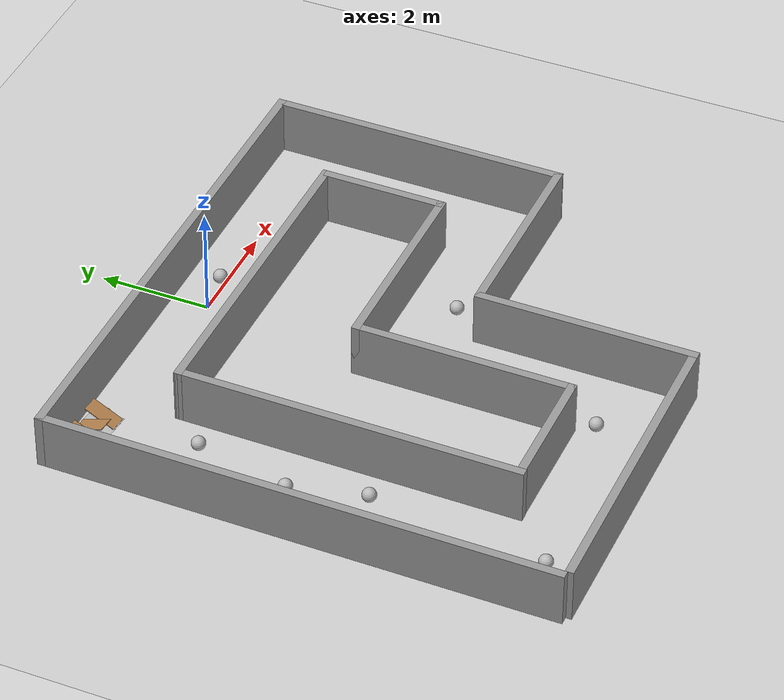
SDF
<sdf version="1.6">
 <world name="default">
  <light name="sun" type="directional">
   <pose>0 0 10 0 -0 0</pose>
   <diffuse>0.8 0.8 0.8 1</diffuse>
   <specular>0.2 0.2 0.2 1</specular>
   <attenuation>
    <range>1000</range>
    <constant>0.9</constant>
    <linear>0.01</linear>
    <quadratic>0.001</quadratic>
   </attenuation>
   <direction>0.5 0.1 -0.9</direction>
  </light>
  <model name="ground_plane">
   <static>1</static>
   <link name="link">
    <collision name="collision">
     <geometry><plane><normal>0 0 1</normal><size>100 100</size></plane></geometry>
     <surface><friction><ode><mu>100</mu><mu2>50</mu2></ode></friction></surface>
    </collision>
    <visual name="visual">
     <cast_shadows>0</cast_shadows>
     <geometry><plane><normal>0 0 1</normal><size>100 100</size></plane></geometry>
     <material>
      <script><uri>file://media/materials/scripts/gazebo.material</uri><name>Gazebo/Grey</name></script>
     </material>
    </visual>
    <velocity_decay><linear>0</linear><angular>0</angular></velocity_decay>
   </link>
  </model>
  <scene><ambient>0.4 0.4 0.4 1</ambient><background>0.7 0.7 0.7 1</background><shadows>0</shadows></scene>
  <physics name="default_physics" default="0" type="ode">
   <max_step_size>0.01</max_step_size>
   <real_time_factor>1</real_time_factor>
   <real_time_update_rate>0</real_time_update_rate>
  </physics>
  <model name="Circuit_ql_2">
   <pose>1e-06 -3.85 0 0 -0 1.567</pose>
   <link name="Wall_0">
    <collision name="Wall_0_Collision">
     <geometry><box><size>5.75 0.15 1</size></box></geometry>
     <pose>0 0 0.5 0 -0 0</pose>
    </collision>
    <visual name="Wall_0_Visual">
     <pose>0 0 0.5 0 -0 0</pose>
     <geometry><box><size>5.75 0.15 1</size></box></geometry>
     <material>
      <script><uri>file://media/materials/scripts/gazebo.material</uri><name>Gazebo/Grey</name></script>
      <ambient>1 1 1 1</ambient>
     </material>
    </visual>
    <pose>-4.6 1.725 0 0 0 -1.5708</pose>
   </link>
   <link name="Wall_1">
    <collision name="Wall_1_Collision">
     <geometry><box><size>4 0.15 1</size></box></geometry>
     <pose>0 0 0.5 0 -0 0</pose>
    </collision>
    <visual name="Wall_1_Visual">
     <pose>0 0 0.5 0 -0 0</pose>
     <geometry><box><size>4 0.15 1</size></box></geometry>
     <material>
      <script><uri>file://media/materials/scripts/gazebo.material</uri><name>Gazebo/Grey</name></script>
      <ambient>1 1 1 1</ambient>
     </material>
    </visual>
    <pose>-2.675 -1.075 0 0 -0 0</pose>
   </link>
   <link name="Wall_11">
    <collision name="Wall_11_Collision">
     <geometry><box><size>2.25 0.15 1</size></box></geometry>
     <pose>0 0 0.5 0 -0 0</pose>
    </collision>
    <visual name="Wall_11_Visual">
     <pose>0 0 0.5 0 -0 0</pose>
     <geometry><box><size>2.25 0.15 1</size></box></geometry>
     <material>
      <script><uri>file://media/materials/scripts/gazebo.material</uri><name>Gazebo/Grey</name></script>
      <ambient>1 1 1 1</ambient>
     </material>
    </visual>
    <pose>-3.036 1.559 0 0 0 -1.5708</pose>
   </link>
   <link name="Wall_12">
    <collision name="Wall_12_Collision">
     <geometry><box><size>4 0.15 1</size></box></geometry>
     <pose>0 0 0.5 0 -0 0</pose>
    </collision>
    <visual name="Wall_12_Visual">
     <pose>0 0 0.5 0 -0 0</pose>
     <geometry><box><size>4 0.15 1</size></box></geometry>
     <material>
      <script><uri>file://media/materials/scripts/gazebo.material</uri><name>Gazebo/Grey</name></script>
      <ambient>1 1 1 1</ambient>
     </material>
    </visual>
    <pose>-1.111 0.509 0 0 -0 0</pose>
   </link>
   <link name="Wall_13">
    <collision name="Wall_13_Collision">
     <geometry><box><size>3.75 0.15 1</size></box></geometry>
     <pose>0 0 0.5 0 -0 0</pose>
    </collision>
    <visual name="Wall_13_Visual">
     <pose>0 0 0.5 0 -0 0</pose>
     <geometry><box><size>3.75 0.15 1</size></box></geometry>
     <material>
      <script><uri>file://media/materials/scripts/gazebo.material</uri><name>Gazebo/Grey</name></script>
      <ambient>1 1 1 1</ambient>
     </material>
    </visual>
    <pose>0.814 -1.291 0 0 0 -1.5708</pose>
   </link>
   <link name="Wall_14">
    <collision name="Wall_14_Collision">
     <geometry><box><size>2.25 0.15 1</size></box></geometry>
     <pose>0 0 0.5 0 -0 0</pose>
    </collision>
    <visual name="Wall_14_Visual">
     <pose>0 0 0.5 0 -0 0</pose>
     <geometry><box><size>2.25 0.15 1</size></box></geometry>
     <material>
      <script><uri>file://media/materials/scripts/gazebo.material</uri><name>Gazebo/Grey</name></script>
      <ambient>1 1 1 1</ambient>
     </material>
    </visual>
    <pose>1.9 -3.091 0 0 -0 0</pose>
   </link>
   <link name="Wall_15">
    <collision name="Wall_15_Collision">
     <geometry><box><size>5.98502 0.15 1</size></box></geometry>
     <pose>0 0 0.5 0 -0 0</pose>
    </collision>
    <visual name="Wall_15_Visual">
     <pose>0 0 0.5 0 -0 0</pose>
     <geometry><box><size>5.98502 0.15 1</size></box></geometry>
     <material>
      <script><uri>file://media/materials/scripts/gazebo.material</uri><name>Gazebo/Grey</name></script>
      <ambient>1 1 1 1</ambient>
     </material>
    </visual>
    <pose>3.0215 -0.1735 0 0 -0 1.56823</pose>
   </link>
   <link name="Wall_16">
    <collision name="Wall_16_Collision">
     <geometry><box><size>6.2 0.15 1</size></box></geometry>
     <pose>0 0 0.5 0 -0 0</pose>
    </collision>
    <visual name="Wall_16_Visual">
     <pose>0 0 0.5 0 -0 0</pose>
     <geometry><box><size>6.2 0.15 1</size></box></geometry>
     <material>
      <script><uri>file://media/materials/scripts/gazebo.material</uri><name>Gazebo/Grey</name></script>
      <ambient>1 1 1 1</ambient>
     </material>
    </visual>
    <pose>-0.02 2.744 0 0 -0 3.14159</pose>
   </link>
   <link name="Wall_2">
    <collision name="Wall_2_Collision">
     <geometry><box><size>3.7 0.15 1</size></box></geometry>
     <pose>0 0 0.5 0 -0 0</pose>
    </collision>
    <visual name="Wall_2_Visual">
     <pose>0 0 0.5 0 -0 0</pose>
     <geometry><box><size>3.7 0.15 1</size></box></geometry>
     <material>
      <script><uri>file://media/materials/scripts/gazebo.material</uri><name>Gazebo/Grey</name></script>
      <ambient>1 1 1 1</ambient>
     </material>
    </visual>
    <pose>-0.75 -2.875 0 0 0 -1.5708</pose>
   </link>
   <link name="Wall_3">
    <collision name="Wall_3_Collision">
     <geometry><box><size>5.5 0.15 1</size></box></geometry>
     <pose>0 0 0.5 0 -0 0</pose>
    </collision>
    <visual name="Wall_3_Visual">
     <pose>0 0 0.5 0 -0 0</pose>
     <geometry><box><size>5.5 0.15 1</size></box></geometry>
     <material>
      <script><uri>file://media/materials/scripts/gazebo.material</uri><name>Gazebo/Grey</name></script>
      <ambient>1 1 1 1</ambient>
     </material>
    </visual>
    <pose>1.925 -4.675 0 0 -0 0</pose>
   </link>
   <link name="Wall_7">
    <collision name="Wall_7_Collision">
     <geometry><box><size>9.5 0.15 1</size></box></geometry>
     <pose>0 0 0.5 0 -0 0</pose>
    </collision>
    <visual name="Wall_7_Visual">
     <pose>0 0 0.5 0 -0 0</pose>
     <geometry><box><size>9.5 0.15 1</size></box></geometry>
     <material>
      <script><uri>file://media/materials/scripts/gazebo.material</uri><name>Gazebo/Grey</name></script>
      <ambient>1 1 1 1</ambient>
     </material>
    </visual>
    <pose>4.6 0 0 0 -0 1.5708</pose>
   </link>
   <link name="Wall_9">
    <collision name="Wall_9_Collision">
     <geometry><box><size>9.25 0.15 1</size></box></geometry>
     <pose>0 0 0.5 0 -0 0</pose>
    </collision>
    <visual name="Wall_9_Visual">
     <pose>0 0 0.5 0 -0 0</pose>
     <geometry><box><size>9.25 0.15 1</size></box></geometry>
     <material>
      <script><uri>file://media/materials/scripts/gazebo.material</uri><name>Gazebo/Grey</name></script>
      <ambient>1 1 1 1</ambient>
     </material>
    </visual>
    <pose>0.05 4.675 0 0 -0 3.14159</pose>
   </link>
   <static>1</static>
  </model>
  <gravity>0 0 -9.8</gravity>
  <magnetic_field>6e-06 2.3e-05 -4.2e-05</magnetic_field>
  <atmosphere type="adiabatic"/>
  <spherical_coordinates>
   <surface_model>EARTH_WGS84</surface_model>
   <latitude_deg>0</latitude_deg>
   <longitude_deg>0</longitude_deg>
   <elevation>0</elevation>
   <heading_deg>0</heading_deg>
  </spherical_coordinates>
  <model name="frc2016_chevaldefrise">
   <link name="base">
    <inertial>
     <mass>10</mass>
     <pose>0 0 0.15672 0 -0 0</pose>
     <inertia><ixx>0.380221</ixx><ixy>0</ixy><ixz>0</ixz><iyy>1.43365</iyy><iyz>0</iyz><izz>1.64745</izz></inertia>
    </inertial>
    <visual name="platform">
     <pose>0 0 0.06968 0 -0 0</pose>
     <geometry><box><size>1.27 0.5969 0.003175</size></box></geometry>
    </visual>
    <collision name="platform">
     <pose>0 0 0.06968 0 -0 0</pose>
     <geometry><box><size>1.27 0.5969 0.003175</size></box></geometry>
    </collision>
    <visual name="bar">
     <pose>0 0 0.16855 0 1.5707 0</pose>
     <geometry><cylinder><radius>0.02108</radius><length>1.273</length></cylinder></geometry>
    </visual>
    <collision name="bar">
     <pose>0 0 0.16855 0 1.5707 0</pose>
     <geometry><cylinder><radius>0.02108</radius><length>1.27</length></cylinder></geometry>
    </collision>
    <visual name="castor1">
     <pose>-0.45653 -0.16581 0.03175 0 -0 0</pose>
     <geometry><sphere><radius>0.03175</radius></sphere></geometry>
    </visual>
    <collision name="castor1">
     <pose>-0.45653 -0.16581 0.03175 0 -0 0</pose>
     <geometry><sphere><radius>0.03175</radius></sphere></geometry>
    </collision>
    <visual name="castor2">
     <pose>-0.27855 0.21408 0.03175 0 -0 0</pose>
     <geometry><sphere><radius>0.03175</radius></sphere></geometry>
    </visual>
    <collision name="castor2">
     <pose>-0.27855 0.21408 0.03175 0 -0 0</pose>
     <geometry><sphere><radius>0.03175</radius></sphere></geometry>
    </collision>
    <visual name="castor3">
     <pose>0.28191 0.21419 0.03175 0 -0 0</pose>
     <geometry><sphere><radius>0.03175</radius></sphere></geometry>
    </visual>
    <collision name="castor3">
     <pose>0.28191 0.21419 0.03175 0 -0 0</pose>
     <geometry><sphere><radius>0.03175</radius></sphere></geometry>
    </collision>
    <visual name="castor4">
     <pose>0.45965 -0.16602 0.03175 0 -0 0</pose>
     <geometry><sphere><radius>0.03175</radius></sphere></geometry>
    </visual>
    <collision name="castor4">
     <pose>0.45965 -0.16602 0.03175 0 -0 0</pose>
     <geometry><sphere><radius>0.03175</radius></sphere></geometry>
    </collision>
   </link>
   <link name="slant1">
    <pose>-0.4572 0.01307 0.1997 -0.39732 0 0</pose>
    <inertial>
     <pose>0 0.1 0 0 -0 0</pose>
     <mass>2</mass>
     <inertia>
      <ixx>0.0606857</ixx>
      <ixy>0</ixy>
      <ixz>0</ixz>
      <iyy>0.0148723</iyy>
      <iyz>0</iyz>
      <izz>0.0755042</izz>
     </inertia>
    </inertial>
    <visual name="visual">
     <geometry><box><size>0.29845 0.593285 0.0127</size></box></geometry>
     <material><script><name>Gazebo/WoodFloor</name><uri>__default__</uri></script></material>
    </visual>
    <collision name="collision"><geometry><box><size>0.29845 0.593285 0.0127</size></box></geometry></collision>
   </link>
   <link name="slant2">
    <pose>-0.1524 -0.01307 0.1997 0.39732 -0 0</pose>
    <inertial>
     <mass>2</mass>
     <pose>0 -0.1 0 0 -0 0</pose>
     <inertia>
      <ixx>0.0606857</ixx>
      <ixy>0</ixy>
      <ixz>0</ixz>
      <iyy>0.0148723</iyy>
      <iyz>0</iyz>
      <izz>0.0755042</izz>
     </inertia>
    </inertial>
    <visual name="visual">
     <geometry><box><size>0.29845 0.593285 0.0127</size></box></geometry>
     <material><script><name>Gazebo/WoodFloor</name><uri>__default__</uri></script></material>
    </visual>
    <collision name="collision"><geometry><box><size>0.29845 0.593285 0.0127</size></box></geometry></collision>
   </link>
   <link name="slant3">
    <pose>0.1524 0.01307 0.1997 -0.39732 0 0</pose>
    <inertial>
     <pose>0 0.1 0 0 -0 0</pose>
     <mass>2</mass>
     <inertia>
      <ixx>0.0606857</ixx>
      <ixy>0</ixy>
      <ixz>0</ixz>
      <iyy>0.0148723</iyy>
      <iyz>0</iyz>
      <izz>0.0755042</izz>
     </inertia>
    </inertial>
    <visual name="visual">
     <geometry><box><size>0.29845 0.593285 0.0127</size></box></geometry>
     <material><script><name>Gazebo/WoodFloor</name><uri>__default__</uri></script></material>
    </visual>
    <collision name="collision"><geometry><box><size>0.29845 0.593285 0.0127</size></box></geometry></collision>
   </link>
   <link name="slant4">
    <pose>0.4572 -0.01307 0.1997 0.39732 -0 0</pose>
    <inertial>
     <pose>0 -0.1 0 0 -0 0</pose>
     <mass>2</mass>
     <inertia>
      <ixx>0.0606857</ixx>
      <ixy>0</ixy>
      <ixz>0</ixz>
      <iyy>0.0148723</iyy>
      <iyz>0</iyz>
      <izz>0.0755042</izz>
     </inertia>
    </inertial>
    <visual name="visual">
     <geometry><box><size>0.29845 0.593285 0.0127</size></box></geometry>
     <material><script><name>Gazebo/WoodFloor</name><uri>__default__</uri></script></material>
    </visual>
    <collision name="collision"><geometry><box><size>0.29845 0.593285 0.0127</size></box></geometry></collision>
   </link>
   <joint name="slant1_joint" type="revolute">
    <parent>base</parent>
    <child>slant1</child>
    <axis>
     <xyz>1 0 0</xyz>
     <limit><lower>0</lower><upper>1.5707</upper></limit>
     <use_parent_model_frame>0</use_parent_model_frame>
     <dynamics><spring_reference>0</spring_reference><spring_stiffness>0</spring_stiffness></dynamics>
    </axis>
   </joint>
   <joint name="slant2_joint" type="revolute">
    <parent>base</parent>
    <child>slant2</child>
    <axis>
     <xyz>1 0 0</xyz>
     <limit><lower>-1.5707</lower><upper>0</upper></limit>
     <use_parent_model_frame>0</use_parent_model_frame>
     <dynamics><spring_reference>0</spring_reference><spring_stiffness>0</spring_stiffness></dynamics>
    </axis>
   </joint>
   <joint name="slant3_joint" type="revolute">
    <parent>base</parent>
    <child>slant3</child>
    <axis>
     <xyz>1 0 0</xyz>
     <limit><lower>0</lower><upper>1.5707</upper></limit>
     <use_parent_model_frame>0</use_parent_model_frame>
     <dynamics><spring_reference>0</spring_reference><spring_stiffness>0</spring_stiffness></dynamics>
    </axis>
   </joint>
   <joint name="slant4_joint" type="revolute">
    <parent>base</parent>
    <child>slant4</child>
    <axis>
     <xyz>1 0 0</xyz>
     <limit><lower>-1.5707</lower><upper>0</upper></limit>
     <use_parent_model_frame>0</use_parent_model_frame>
     <dynamics><spring_reference>0</spring_reference><spring_stiffness>0</spring_stiffness></dynamics>
    </axis>
   </joint>
   <pose>-3.84579 0.34085 -0.000117 -0.000705 -0 -0.084499</pose>
  </model>
  <model name="frc2016_ball">
   <pose>-3.67725 -7.70415 0.127 0 -0 0</pose>
   <link name="link">
    <inertial>
     <mass>0.213</mass>
     <inertia>
      <ixx>0.00322667</ixx>
      <ixy>0</ixy>
      <ixz>0</ixz>
      <iyy>0.00322667</iyy>
      <iyz>0</iyz>
      <izz>0.00322667</izz>
     </inertia>
    </inertial>
    <visual name="visual"><geometry><sphere><radius>0.127</radius></sphere></geometry></visual>
    <collision name="collision">
     <geometry><sphere><radius>0.127</radius></sphere></geometry>
     <surface>
      <bounce><restitution_coefficient>0.15937</restitution_coefficient><threshold>0</threshold></bounce>
      <contact><ode><max_vel>100</max_vel><min_depth>0.001</min_depth></ode></contact>
     </surface>
    </collision>
   </link>
  </model>
  <model name="frc2016_ball_0">
   <pose>-3.98166 -5.20879 0.127 0 -0 0</pose>
   <link name="link">
    <inertial>
     <mass>0.213</mass>
     <inertia>
      <ixx>0.00322667</ixx>
      <ixy>0</ixy>
      <ixz>0</ixz>
      <iyy>0.00322667</iyy>
      <iyz>0</iyz>
      <izz>0.00322667</izz>
     </inertia>
    </inertial>
    <visual name="visual"><geometry><sphere><radius>0.127</radius></sphere></geometry></visual>
    <collision name="collision">
     <geometry><sphere><radius>0.127</radius></sphere></geometry>
     <surface>
      <bounce><restitution_coefficient>0.15937</restitution_coefficient><threshold>0</threshold></bounce>
      <contact><ode><max_vel>100</max_vel><min_depth>0.001</min_depth></ode></contact>
     </surface>
    </collision>
   </link>
  </model>
  <model name="frc2016_ball_1">
   <pose>-3.71144 -3.16621 0.127 0 -0 0</pose>
   <link name="link">
    <inertial>
     <mass>0.213</mass>
     <inertia>
      <ixx>0.00322667</ixx>
      <ixy>0</ixy>
      <ixz>0</ixz>
      <iyy>0.00322667</iyy>
      <iyz>0</iyz>
      <izz>0.00322667</izz>
     </inertia>
    </inertial>
    <visual name="visual"><geometry><sphere><radius>0.127</radius></sphere></geometry></visual>
    <collision name="collision">
     <geometry><sphere><radius>0.127</radius></sphere></geometry>
     <surface>
      <bounce><restitution_coefficient>0.15937</restitution_coefficient><threshold>0</threshold></bounce>
      <contact><ode><max_vel>100</max_vel><min_depth>0.001</min_depth></ode></contact>
     </surface>
    </collision>
   </link>
  </model>
  <model name="frc2016_ball_2">
   <pose>1.57842 -3.99592 0.127 0 -0 0</pose>
   <link name="link">
    <inertial>
     <mass>0.213</mass>
     <inertia>
      <ixx>0.00322667</ixx>
      <ixy>0</ixy>
      <ixz>0</ixz>
      <iyy>0.00322667</iyy>
      <iyz>0</iyz>
      <izz>0.00322667</izz>
     </inertia>
    </inertial>
    <visual name="visual"><geometry><sphere><radius>0.127</radius></sphere></geometry></visual>
    <collision name="collision">
     <geometry><sphere><radius>0.127</radius></sphere></geometry>
     <surface>
      <bounce><restitution_coefficient>0.15937</restitution_coefficient><threshold>0</threshold></bounce>
      <contact><ode><max_vel>100</max_vel><min_depth>0.001</min_depth></ode></contact>
     </surface>
    </collision>
   </link>
  </model>
  <model name="frc2016_ball_3">
   <pose>-4.25838 -2.35998 0.127 0 -0 0</pose>
   <link name="link">
    <inertial>
     <mass>0.213</mass>
     <inertia>
      <ixx>0.00322667</ixx>
      <ixy>0</ixy>
      <ixz>0</ixz>
      <iyy>0.00322667</iyy>
      <iyz>0</iyz>
      <izz>0.00322667</izz>
     </inertia>
    </inertial>
    <visual name="visual"><geometry><sphere><radius>0.127</radius></sphere></geometry></visual>
    <collision name="collision">
     <geometry><sphere><radius>0.127</radius></sphere></geometry>
     <surface>
      <bounce><restitution_coefficient>0.15937</restitution_coefficient><threshold>0</threshold></bounce>
      <contact><ode><max_vel>100</max_vel><min_depth>0.001</min_depth></ode></contact>
     </surface>
    </collision>
   </link>
  </model>
  <model name="frc2016_ball_3_clone">
   <pose>-3.33825 -1.4254 0.127 0 -0 0</pose>
   <link name="link">
    <inertial>
     <mass>0.213</mass>
     <inertia>
      <ixx>0.00322667</ixx>
      <ixy>0</ixy>
      <ixz>0</ixz>
      <iyy>0.00322667</iyy>
      <iyz>0</iyz>
      <izz>0.00322667</izz>
     </inertia>
    </inertial>
    <visual name="visual"><geometry><sphere><radius>0.127</radius></sphere></geometry></visual>
    <collision name="collision">
     <geometry><sphere><radius>0.127</radius></sphere></geometry>
     <surface>
      <bounce><restitution_coefficient>0.15937</restitution_coefficient><threshold>0</threshold></bounce>
      <contact><ode><max_vel>100</max_vel><min_depth>0.001</min_depth></ode></contact>
     </surface>
    </collision>
   </link>
  </model>
  <model name="frc2016_ball_3_clone_0">
   <pose>-3.36693 -4.50593 0.127 0 -0 0</pose>
   <link name="link">
    <inertial>
     <mass>0.213</mass>
     <inertia>
      <ixx>0.00322667</ixx>
      <ixy>0</ixy>
      <ixz>0</ixz>
      <iyy>0.00322667</iyy>
      <iyz>0</iyz>
      <izz>0.00322667</izz>
     </inertia>
    </inertial>
    <visual name="visual"><geometry><sphere><radius>0.127</radius></sphere></geometry></visual>
    <collision name="collision">
     <geometry><sphere><radius>0.127</radius></sphere></geometry>
     <surface>
      <bounce><restitution_coefficient>0.15937</restitution_coefficient><threshold>0</threshold></bounce>
      <contact><ode><max_vel>100</max_vel><min_depth>0.001</min_depth></ode></contact>
     </surface>
    </collision>
   </link>
  </model>
  <model name="frc2016_ball_3_clone_1">
   <pose>0.732815 0.101204 0.127 0 -0 0</pose>
   <link name="link">
    <inertial>
     <mass>0.213</mass>
     <inertia>
      <ixx>0.00322667</ixx>
      <ixy>0</ixy>
      <ixz>0</ixz>
      <iyy>0.00322667</iyy>
      <iyz>0</iyz>
      <izz>0.00322667</izz>
     </inertia>
    </inertial>
    <visual name="visual"><geometry><sphere><radius>0.127</radius></sphere></geometry></visual>
    <collision name="collision">
     <geometry><sphere><radius>0.127</radius></sphere></geometry>
     <surface>
      <bounce><restitution_coefficient>0.15937</restitution_coefficient><threshold>0</threshold></bounce>
      <contact><ode><max_vel>100</max_vel><min_depth>0.001</min_depth></ode></contact>
     </surface>
    </collision>
   </link>
  </model>
  <model name="frc2016_ball_3_clone_2">
   <pose>3.69811 -0.449943 0.127 0 -0 0</pose>
   <link name="link">
    <inertial>
     <mass>0.213</mass>
     <inertia>
      <ixx>0.00322667</ixx>
      <ixy>0</ixy>
      <ixz>0</ixz>
      <iyy>0.00322667</iyy>
      <iyz>0</iyz>
      <izz>0.00322667</izz>
     </inertia>
    </inertial>
    <visual name="visual"><geometry><sphere><radius>0.127</radius></sphere></geometry></visual>
    <collision name="collision">
     <geometry><sphere><radius>0.127</radius></sphere></geometry>
     <surface>
      <bounce><restitution_coefficient>0.15937</restitution_coefficient><threshold>0</threshold></bounce>
      <contact><ode><max_vel>100</max_vel><min_depth>0.001</min_depth></ode></contact>
     </surface>
    </collision>
   </link>
  </model>
  <model name="frc2016_ball_3_clone_3">
   <pose>-0.285727 -7.26677 0.127 0 -0 0</pose>
   <link name="link">
    <inertial>
     <mass>0.213</mass>
     <inertia>
      <ixx>0.00322667</ixx>
      <ixy>0</ixy>
      <ixz>0</ixz>
      <iyy>0.00322667</iyy>
      <iyz>0</iyz>
      <izz>0.00322667</izz>
     </inertia>
    </inertial>
    <visual name="visual"><geometry><sphere><radius>0.127</radius></sphere></geometry></visual>
    <collision name="collision">
     <geometry><sphere><radius>0.127</radius></sphere></geometry>
     <surface>
      <bounce><restitution_coefficient>0.15937</restitution_coefficient><threshold>0</threshold></bounce>
      <contact><ode><max_vel>100</max_vel><min_depth>0.001</min_depth></ode></contact>
     </surface>
    </collision>
   </link>
  </model>
 </world>
</sdf>
